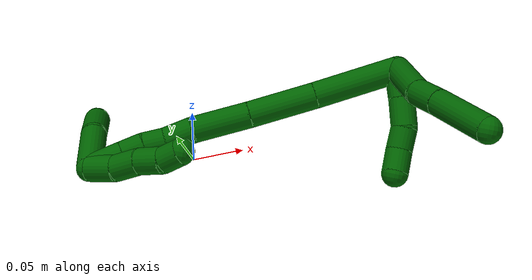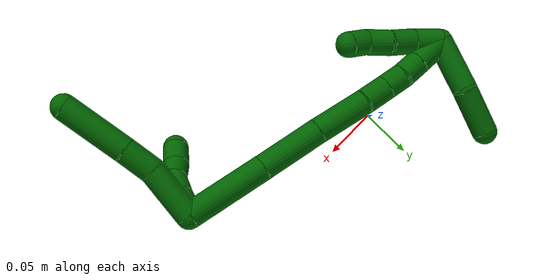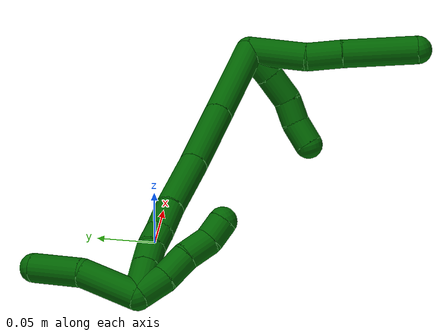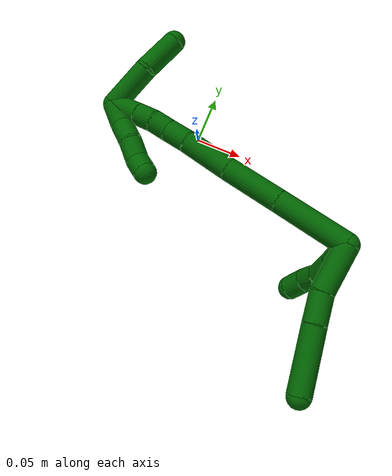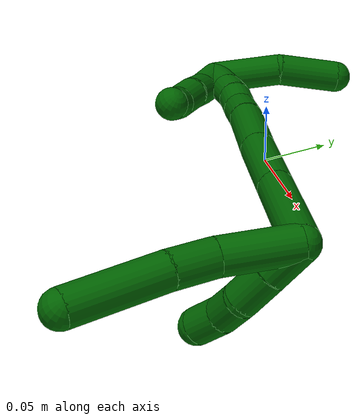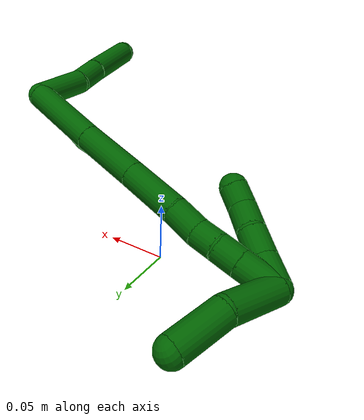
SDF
<sdf version="1.7">
 <world name="default">
  <model name="6">
   <static>0</static>
   <link name="6">
    <collision name="collision-cylinder-e_1_2_8">
     <pose>0.003951 -0.023936 -0.009791 1.95907 0.151613 0.225298</pose>
     <geometry><cylinder><radius>0.0125</radius><length>0.052322</length></cylinder></geometry>
     <surface>
      <friction><ode><mu>1.16</mu><mu2>1.16</mu2><slip1>0</slip1><slip2>0</slip2></ode></friction>
      <contact><ode><kp>1e+06</kp><kd>1</kd><max_vel>0</max_vel><min_depth>0.001</min_depth></ode></contact>
     </surface>
    </collision>
    <visual name="visual-cylinder-e_1_2_8">
     <pose>0.003951 -0.023936 -0.009791 1.95907 0.151613 0.225298</pose>
     <geometry><cylinder><radius>0.0125</radius><length>0.052322</length></cylinder></geometry>
     <material><ambient>0 0.392157 0.003922 1</ambient></material>
    </visual>
    <collision name="collision-cylinder-e_2_8_9">
     <pose>0.0134 -0.062121 -0.022854 1.79652 0.359661 0.448856</pose>
     <geometry><cylinder><radius>0.0125</radius><length>0.03124</length></cylinder></geometry>
     <surface>
      <friction><ode><mu>1.16</mu><mu2>1.16</mu2><slip1>0</slip1><slip2>0</slip2></ode></friction>
      <contact><ode><kp>1e+06</kp><kd>1</kd><max_vel>0</max_vel><min_depth>0.001</min_depth></ode></contact>
     </surface>
    </collision>
    <visual name="visual-cylinder-e_2_8_9">
     <pose>0.0134 -0.062121 -0.022854 1.79652 0.359661 0.448856</pose>
     <geometry><cylinder><radius>0.0125</radius><length>0.03124</length></cylinder></geometry>
     <material><ambient>0 0.392157 0.003922 1</ambient></material>
    </visual>
    <collision name="collision-cylinder-e_3_9_6">
     <pose>0.031949 -0.105728 -0.03457 1.85087 0.403764 0.530848</pose>
     <geometry><cylinder><radius>0.0125</radius><length>0.066439</length></cylinder></geometry>
     <surface>
      <friction><ode><mu>1.16</mu><mu2>1.16</mu2><slip1>0</slip1><slip2>0</slip2></ode></friction>
      <contact><ode><kp>1e+06</kp><kd>1</kd><max_vel>0</max_vel><min_depth>0.001</min_depth></ode></contact>
     </surface>
    </collision>
    <visual name="visual-cylinder-e_3_9_6">
     <pose>0.031949 -0.105728 -0.03457 1.85087 0.403764 0.530848</pose>
     <geometry><cylinder><radius>0.0125</radius><length>0.066439</length></cylinder></geometry>
     <material><ambient>0 0.392157 0.003922 1</ambient></material>
    </visual>
    <collision name="collision-cylinder-e_1_2_10">
     <pose>0.003485 -0.00391 -0.013161 2.85281 0.248565 1.4196</pose>
     <geometry><cylinder><radius>0.0125</radius><length>0.028329</length></cylinder></geometry>
     <surface>
      <friction><ode><mu>1.16</mu><mu2>1.16</mu2><slip1>0</slip1><slip2>0</slip2></ode></friction>
      <contact><ode><kp>1e+06</kp><kd>1</kd><max_vel>0</max_vel><min_depth>0.001</min_depth></ode></contact>
     </surface>
    </collision>
    <visual name="visual-cylinder-e_1_2_10">
     <pose>0.003485 -0.00391 -0.013161 2.85281 0.248565 1.4196</pose>
     <geometry><cylinder><radius>0.0125</radius><length>0.028329</length></cylinder></geometry>
     <material><ambient>0 0.392157 0.003922 1</ambient></material>
    </visual>
    <collision name="collision-cylinder-e_2_10_11">
     <pose>0.009733 -0.011229 -0.039258 2.88392 0.203756 1.33612</pose>
     <geometry><cylinder><radius>0.0125</radius><length>0.02732</length></cylinder></geometry>
     <surface>
      <friction><ode><mu>1.16</mu><mu2>1.16</mu2><slip1>0</slip1><slip2>0</slip2></ode></friction>
      <contact><ode><kp>1e+06</kp><kd>1</kd><max_vel>0</max_vel><min_depth>0.001</min_depth></ode></contact>
     </surface>
    </collision>
    <visual name="visual-cylinder-e_2_10_11">
     <pose>0.009733 -0.011229 -0.039258 2.88392 0.203756 1.33612</pose>
     <geometry><cylinder><radius>0.0125</radius><length>0.02732</length></cylinder></geometry>
     <material><ambient>0 0.392157 0.003922 1</ambient></material>
    </visual>
    <collision name="collision-cylinder-e_3_11_12">
     <pose>0.011893 -0.015286 -0.063027 3.08183 -0.055619 -1.49905</pose>
     <geometry><cylinder><radius>0.0125</radius><length>0.021739</length></cylinder></geometry>
     <surface>
      <friction><ode><mu>1.16</mu><mu2>1.16</mu2><slip1>0</slip1><slip2>0</slip2></ode></friction>
      <contact><ode><kp>1e+06</kp><kd>1</kd><max_vel>0</max_vel><min_depth>0.001</min_depth></ode></contact>
     </surface>
    </collision>
    <visual name="visual-cylinder-e_3_11_12">
     <pose>0.011893 -0.015286 -0.063027 3.08183 -0.055619 -1.49905</pose>
     <geometry><cylinder><radius>0.0125</radius><length>0.021739</length></cylinder></geometry>
     <material><ambient>0 0.392157 0.003922 1</ambient></material>
    </visual>
    <collision name="collision-cylinder-e_4_12_5">
     <pose>0.010395 -0.019251 -0.084631 2.84287 -0.079148 -0.514576</pose>
     <geometry><cylinder><radius>0.0125</radius><length>0.022611</length></cylinder></geometry>
     <surface>
      <friction><ode><mu>1.16</mu><mu2>1.16</mu2><slip1>0</slip1><slip2>0</slip2></ode></friction>
      <contact><ode><kp>1e+06</kp><kd>1</kd><max_vel>0</max_vel><min_depth>0.001</min_depth></ode></contact>
     </surface>
    </collision>
    <visual name="visual-cylinder-e_4_12_5">
     <pose>0.010395 -0.019251 -0.084631 2.84287 -0.079148 -0.514576</pose>
     <geometry><cylinder><radius>0.0125</radius><length>0.022611</length></cylinder></geometry>
     <material><ambient>0 0.392157 0.003922 1</ambient></material>
    </visual>
    <collision name="collision-cylinder-e_1_2_13">
     <pose>-0.034782 0.006863 -0.019323 -2.80032 -1.0381 2.55573</pose>
     <geometry><cylinder><radius>0.0125</radius><length>0.080753</length></cylinder></geometry>
     <surface>
      <friction><ode><mu>1.16</mu><mu2>1.16</mu2><slip1>0</slip1><slip2>0</slip2></ode></friction>
      <contact><ode><kp>1e+06</kp><kd>1</kd><max_vel>0</max_vel><min_depth>0.001</min_depth></ode></contact>
     </surface>
    </collision>
    <visual name="visual-cylinder-e_1_2_13">
     <pose>-0.034782 0.006863 -0.019323 -2.80032 -1.0381 2.55573</pose>
     <geometry><cylinder><radius>0.0125</radius><length>0.080753</length></cylinder></geometry>
     <material><ambient>0 0.392157 0.003922 1</ambient></material>
    </visual>
    <collision name="collision-cylinder-e_2_13_14">
     <pose>-0.097262 0.018539 -0.053293 -2.82408 -1.06288 2.60979</pose>
     <geometry><cylinder><radius>0.0125</radius><length>0.063401</length></cylinder></geometry>
     <surface>
      <friction><ode><mu>1.16</mu><mu2>1.16</mu2><slip1>0</slip1><slip2>0</slip2></ode></friction>
      <contact><ode><kp>1e+06</kp><kd>1</kd><max_vel>0</max_vel><min_depth>0.001</min_depth></ode></contact>
     </surface>
    </collision>
    <visual name="visual-cylinder-e_2_13_14">
     <pose>-0.097262 0.018539 -0.053293 -2.82408 -1.06288 2.60979</pose>
     <geometry><cylinder><radius>0.0125</radius><length>0.063401</length></cylinder></geometry>
     <material><ambient>0 0.392157 0.003922 1</ambient></material>
    </visual>
    <collision name="collision-cylinder-e_3_14_15">
     <pose>-0.148874 0.027962 -0.079908 -2.77397 -1.07851 2.53916</pose>
     <geometry><cylinder><radius>0.0125</radius><length>0.05427</length></cylinder></geometry>
     <surface>
      <friction><ode><mu>1.16</mu><mu2>1.16</mu2><slip1>0</slip1><slip2>0</slip2></ode></friction>
      <contact><ode><kp>1e+06</kp><kd>1</kd><max_vel>0</max_vel><min_depth>0.001</min_depth></ode></contact>
     </surface>
    </collision>
    <visual name="visual-cylinder-e_3_14_15">
     <pose>-0.148874 0.027962 -0.079908 -2.77397 -1.07851 2.53916</pose>
     <geometry><cylinder><radius>0.0125</radius><length>0.05427</length></cylinder></geometry>
     <material><ambient>0 0.392157 0.003922 1</ambient></material>
    </visual>
    <collision name="collision-cylinder-e_4_15_16">
     <pose>-0.183943 0.035154 -0.099263 -2.80525 -0.959111 2.51049</pose>
     <geometry><cylinder><radius>0.0125</radius><length>0.027256</length></cylinder></geometry>
     <surface>
      <friction><ode><mu>1.16</mu><mu2>1.16</mu2><slip1>0</slip1><slip2>0</slip2></ode></friction>
      <contact><ode><kp>1e+06</kp><kd>1</kd><max_vel>0</max_vel><min_depth>0.001</min_depth></ode></contact>
     </surface>
    </collision>
    <visual name="visual-cylinder-e_4_15_16">
     <pose>-0.183943 0.035154 -0.099263 -2.80525 -0.959111 2.51049</pose>
     <geometry><cylinder><radius>0.0125</radius><length>0.027256</length></cylinder></geometry>
     <material><ambient>0 0.392157 0.003922 1</ambient></material>
    </visual>
    <collision name="collision-cylinder-e_5_16_17">
     <pose>-0.204561 0.038835 -0.110907 -2.88914 -1.13582 2.74892</pose>
     <geometry><cylinder><radius>0.0125</radius><length>0.020865</length></cylinder></geometry>
     <surface>
      <friction><ode><mu>1.16</mu><mu2>1.16</mu2><slip1>0</slip1><slip2>0</slip2></ode></friction>
      <contact><ode><kp>1e+06</kp><kd>1</kd><max_vel>0</max_vel><min_depth>0.001</min_depth></ode></contact>
     </surface>
    </collision>
    <visual name="visual-cylinder-e_5_16_17">
     <pose>-0.204561 0.038835 -0.110907 -2.88914 -1.13582 2.74892</pose>
     <geometry><cylinder><radius>0.0125</radius><length>0.020865</length></cylinder></geometry>
     <material><ambient>0 0.392157 0.003922 1</ambient></material>
    </visual>
    <collision name="collision-cylinder-e_6_17_18">
     <pose>-0.222711 0.040493 -0.120915 -3.0445 -0.983957 2.96079</pose>
     <geometry><cylinder><radius>0.0125</radius><length>0.020871</length></cylinder></geometry>
     <surface>
      <friction><ode><mu>1.16</mu><mu2>1.16</mu2><slip1>0</slip1><slip2>0</slip2></ode></friction>
      <contact><ode><kp>1e+06</kp><kd>1</kd><max_vel>0</max_vel><min_depth>0.001</min_depth></ode></contact>
     </surface>
    </collision>
    <visual name="visual-cylinder-e_6_17_18">
     <pose>-0.222711 0.040493 -0.120915 -3.0445 -0.983957 2.96079</pose>
     <geometry><cylinder><radius>0.0125</radius><length>0.020871</length></cylinder></geometry>
     <material><ambient>0 0.392157 0.003922 1</ambient></material>
    </visual>
    <collision name="collision-cylinder-e_7_18_1">
     <pose>-0.244953 0.041643 -0.135692 -3.07635 -0.982269 3.01972</pose>
     <geometry><cylinder><radius>0.0125</radius><length>0.032586</length></cylinder></geometry>
     <surface>
      <friction><ode><mu>1.16</mu><mu2>1.16</mu2><slip1>0</slip1><slip2>0</slip2></ode></friction>
      <contact><ode><kp>1e+06</kp><kd>1</kd><max_vel>0</max_vel><min_depth>0.001</min_depth></ode></contact>
     </surface>
    </collision>
    <visual name="visual-cylinder-e_7_18_1">
     <pose>-0.244953 0.041643 -0.135692 -3.07635 -0.982269 3.01972</pose>
     <geometry><cylinder><radius>0.0125</radius><length>0.032586</length></cylinder></geometry>
     <material><ambient>0 0.392157 0.003922 1</ambient></material>
    </visual>
    <collision name="collision-cylinder-e_1_1_19">
     <pose>-0.257841 0.064064 -0.129884 -0.973981 0.025133 -0.013309</pose>
     <geometry><cylinder><radius>0.0125</radius><length>0.052805</length></cylinder></geometry>
     <surface>
      <friction><ode><mu>1.16</mu><mu2>1.16</mu2><slip1>0</slip1><slip2>0</slip2></ode></friction>
      <contact><ode><kp>1e+06</kp><kd>1</kd><max_vel>0</max_vel><min_depth>0.001</min_depth></ode></contact>
     </surface>
    </collision>
    <visual name="visual-cylinder-e_1_1_19">
     <pose>-0.257841 0.064064 -0.129884 -0.973981 0.025133 -0.013309</pose>
     <geometry><cylinder><radius>0.0125</radius><length>0.052805</length></cylinder></geometry>
     <material><ambient>0 0.392157 0.003922 1</ambient></material>
    </visual>
    <collision name="collision-cylinder-e_2_19_4">
     <pose>-0.255119 0.10844 -0.108392 -1.28364 0.087352 -0.065303</pose>
     <geometry><cylinder><radius>0.0125</radius><length>0.047195</length></cylinder></geometry>
     <surface>
      <friction><ode><mu>1.16</mu><mu2>1.16</mu2><slip1>0</slip1><slip2>0</slip2></ode></friction>
      <contact><ode><kp>1e+06</kp><kd>1</kd><max_vel>0</max_vel><min_depth>0.001</min_depth></ode></contact>
     </surface>
    </collision>
    <visual name="visual-cylinder-e_2_19_4">
     <pose>-0.255119 0.10844 -0.108392 -1.28364 0.087352 -0.065303</pose>
     <geometry><cylinder><radius>0.0125</radius><length>0.047195</length></cylinder></geometry>
     <material><ambient>0 0.392157 0.003922 1</ambient></material>
    </visual>
    <collision name="collision-cylinder-e_1_1_20">
     <pose>-0.24764 0.033553 -0.142076 1.27534 0.875074 0.667266</pose>
     <geometry><cylinder><radius>0.0125</radius><length>0.028309</length></cylinder></geometry>
     <surface>
      <friction><ode><mu>1.16</mu><mu2>1.16</mu2><slip1>0</slip1><slip2>0</slip2></ode></friction>
      <contact><ode><kp>1e+06</kp><kd>1</kd><max_vel>0</max_vel><min_depth>0.001</min_depth></ode></contact>
     </surface>
    </collision>
    <visual name="visual-cylinder-e_1_1_20">
     <pose>-0.24764 0.033553 -0.142076 1.27534 0.875074 0.667266</pose>
     <geometry><cylinder><radius>0.0125</radius><length>0.028309</length></cylinder></geometry>
     <material><ambient>0 0.392157 0.003922 1</ambient></material>
    </visual>
    <collision name="collision-cylinder-e_2_20_21">
     <pose>-0.22776 0.016993 -0.134047 0.971169 0.756798 0.413607</pose>
     <geometry><cylinder><radius>0.0125</radius><length>0.026261</length></cylinder></geometry>
     <surface>
      <friction><ode><mu>1.16</mu><mu2>1.16</mu2><slip1>0</slip1><slip2>0</slip2></ode></friction>
      <contact><ode><kp>1e+06</kp><kd>1</kd><max_vel>0</max_vel><min_depth>0.001</min_depth></ode></contact>
     </surface>
    </collision>
    <visual name="visual-cylinder-e_2_20_21">
     <pose>-0.22776 0.016993 -0.134047 0.971169 0.756798 0.413607</pose>
     <geometry><cylinder><radius>0.0125</radius><length>0.026261</length></cylinder></geometry>
     <material><ambient>0 0.392157 0.003922 1</ambient></material>
    </visual>
    <collision name="collision-cylinder-e_3_21_22">
     <pose>-0.209491 0.001092 -0.125916 1.24121 0.829166 0.609571</pose>
     <geometry><cylinder><radius>0.0125</radius><length>0.025097</length></cylinder></geometry>
     <surface>
      <friction><ode><mu>1.16</mu><mu2>1.16</mu2><slip1>0</slip1><slip2>0</slip2></ode></friction>
      <contact><ode><kp>1e+06</kp><kd>1</kd><max_vel>0</max_vel><min_depth>0.001</min_depth></ode></contact>
     </surface>
    </collision>
    <visual name="visual-cylinder-e_3_21_22">
     <pose>-0.209491 0.001092 -0.125916 1.24121 0.829166 0.609571</pose>
     <geometry><cylinder><radius>0.0125</radius><length>0.025097</length></cylinder></geometry>
     <material><ambient>0 0.392157 0.003922 1</ambient></material>
    </visual>
    <collision name="collision-cylinder-e_4_22_3">
     <pose>-0.1938 -0.012614 -0.117735 0.807689 0.685802 0.302784</pose>
     <geometry><cylinder><radius>0.0125</radius><length>0.020333</length></cylinder></geometry>
     <surface>
      <friction><ode><mu>1.16</mu><mu2>1.16</mu2><slip1>0</slip1><slip2>0</slip2></ode></friction>
      <contact><ode><kp>1e+06</kp><kd>1</kd><max_vel>0</max_vel><min_depth>0.001</min_depth></ode></contact>
     </surface>
    </collision>
    <visual name="visual-cylinder-e_4_22_3">
     <pose>-0.1938 -0.012614 -0.117735 0.807689 0.685802 0.302784</pose>
     <geometry><cylinder><radius>0.0125</radius><length>0.020333</length></cylinder></geometry>
     <material><ambient>0 0.392157 0.003922 1</ambient></material>
    </visual>
    <collision name="collision-sphere-3">
     <pose>-0.187361 -0.0183 -0.112296 0 -0 0</pose>
     <geometry><sphere><radius>0.0125</radius></sphere></geometry>
     <surface>
      <friction><ode><mu>1.16</mu><mu2>1.16</mu2><slip1>0</slip1><slip2>0</slip2></ode></friction>
      <contact><ode><kp>1e+06</kp><kd>1</kd><max_vel>0</max_vel><min_depth>0.001</min_depth></ode></contact>
     </surface>
    </collision>
    <visual name="visual-sphere-3">
     <pose>-0.187361 -0.0183 -0.112296 0 -0 0</pose>
     <geometry><sphere><radius>0.0125</radius></sphere></geometry>
     <material><ambient>0 0.392157 0.003922 1</ambient></material>
    </visual>
    <collision name="collision-sphere-22">
     <pose>-0.200238 -0.006928 -0.123173 0 -0 0</pose>
     <geometry><sphere><radius>0.0125</radius></sphere></geometry>
     <surface>
      <friction><ode><mu>1.16</mu><mu2>1.16</mu2><slip1>0</slip1><slip2>0</slip2></ode></friction>
      <contact><ode><kp>1e+06</kp><kd>1</kd><max_vel>0</max_vel><min_depth>0.001</min_depth></ode></contact>
     </surface>
    </collision>
    <visual name="visual-sphere-22">
     <pose>-0.200238 -0.006928 -0.123173 0 -0 0</pose>
     <geometry><sphere><radius>0.0125</radius></sphere></geometry>
     <material><ambient>0 0.392157 0.003922 1</ambient></material>
    </visual>
    <collision name="collision-sphere-21">
     <pose>-0.218744 0.009112 -0.12866 0 -0 0</pose>
     <geometry><sphere><radius>0.0125</radius></sphere></geometry>
     <surface>
      <friction><ode><mu>1.16</mu><mu2>1.16</mu2><slip1>0</slip1><slip2>0</slip2></ode></friction>
      <contact><ode><kp>1e+06</kp><kd>1</kd><max_vel>0</max_vel><min_depth>0.001</min_depth></ode></contact>
     </surface>
    </collision>
    <visual name="visual-sphere-21">
     <pose>-0.218744 0.009112 -0.12866 0 -0 0</pose>
     <geometry><sphere><radius>0.0125</radius></sphere></geometry>
     <material><ambient>0 0.392157 0.003922 1</ambient></material>
    </visual>
    <collision name="collision-sphere-20">
     <pose>-0.236775 0.024874 -0.139434 0 -0 0</pose>
     <geometry><sphere><radius>0.0125</radius></sphere></geometry>
     <surface>
      <friction><ode><mu>1.16</mu><mu2>1.16</mu2><slip1>0</slip1><slip2>0</slip2></ode></friction>
      <contact><ode><kp>1e+06</kp><kd>1</kd><max_vel>0</max_vel><min_depth>0.001</min_depth></ode></contact>
     </surface>
    </collision>
    <visual name="visual-sphere-20">
     <pose>-0.236775 0.024874 -0.139434 0 -0 0</pose>
     <geometry><sphere><radius>0.0125</radius></sphere></geometry>
     <material><ambient>0 0.392157 0.003922 1</ambient></material>
    </visual>
    <collision name="collision-sphere-4">
     <pose>-0.25306 0.130985 -0.101734 0 -0 0</pose>
     <geometry><sphere><radius>0.0125</radius></sphere></geometry>
     <surface>
      <friction><ode><mu>1.16</mu><mu2>1.16</mu2><slip1>0</slip1><slip2>0</slip2></ode></friction>
      <contact><ode><kp>1e+06</kp><kd>1</kd><max_vel>0</max_vel><min_depth>0.001</min_depth></ode></contact>
     </surface>
    </collision>
    <visual name="visual-sphere-4">
     <pose>-0.25306 0.130985 -0.101734 0 -0 0</pose>
     <geometry><sphere><radius>0.0125</radius></sphere></geometry>
     <material><ambient>0 0.392157 0.003922 1</ambient></material>
    </visual>
    <collision name="collision-sphere-11">
     <pose>0.012498 -0.014638 -0.052193 0 -0 0</pose>
     <geometry><sphere><radius>0.0125</radius></sphere></geometry>
     <surface>
      <friction><ode><mu>1.16</mu><mu2>1.16</mu2><slip1>0</slip1><slip2>0</slip2></ode></friction>
      <contact><ode><kp>1e+06</kp><kd>1</kd><max_vel>0</max_vel><min_depth>0.001</min_depth></ode></contact>
     </surface>
    </collision>
    <visual name="visual-sphere-11">
     <pose>0.012498 -0.014638 -0.052193 0 -0 0</pose>
     <geometry><sphere><radius>0.0125</radius></sphere></geometry>
     <material><ambient>0 0.392157 0.003922 1</ambient></material>
    </visual>
    <collision name="collision-sphere-10">
     <pose>0.006969 -0.00782 -0.026322 0 -0 0</pose>
     <geometry><sphere><radius>0.0125</radius></sphere></geometry>
     <surface>
      <friction><ode><mu>1.16</mu><mu2>1.16</mu2><slip1>0</slip1><slip2>0</slip2></ode></friction>
      <contact><ode><kp>1e+06</kp><kd>1</kd><max_vel>0</max_vel><min_depth>0.001</min_depth></ode></contact>
     </surface>
    </collision>
    <visual name="visual-sphere-10">
     <pose>0.006969 -0.00782 -0.026322 0 -0 0</pose>
     <geometry><sphere><radius>0.0125</radius></sphere></geometry>
     <material><ambient>0 0.392157 0.003922 1</ambient></material>
    </visual>
    <collision name="collision-sphere-6">
     <pose>0.045 -0.135086 -0.043014 0 -0 0</pose>
     <geometry><sphere><radius>0.0125</radius></sphere></geometry>
     <surface>
      <friction><ode><mu>1.16</mu><mu2>1.16</mu2><slip1>0</slip1><slip2>0</slip2></ode></friction>
      <contact><ode><kp>1e+06</kp><kd>1</kd><max_vel>0</max_vel><min_depth>0.001</min_depth></ode></contact>
     </surface>
    </collision>
    <visual name="visual-sphere-6">
     <pose>0.045 -0.135086 -0.043014 0 -0 0</pose>
     <geometry><sphere><radius>0.0125</radius></sphere></geometry>
     <material><ambient>0 0.392157 0.003922 1</ambient></material>
    </visual>
    <collision name="collision-sphere-9">
     <pose>0.018897 -0.076371 -0.026126 0 -0 0</pose>
     <geometry><sphere><radius>0.0125</radius></sphere></geometry>
     <surface>
      <friction><ode><mu>1.16</mu><mu2>1.16</mu2><slip1>0</slip1><slip2>0</slip2></ode></friction>
      <contact><ode><kp>1e+06</kp><kd>1</kd><max_vel>0</max_vel><min_depth>0.001</min_depth></ode></contact>
     </surface>
    </collision>
    <visual name="visual-sphere-9">
     <pose>0.018897 -0.076371 -0.026126 0 -0 0</pose>
     <geometry><sphere><radius>0.0125</radius></sphere></geometry>
     <material><ambient>0 0.392157 0.003922 1</ambient></material>
    </visual>
    <collision name="collision-sphere-2">
     <geometry><sphere><radius>0.0125</radius></sphere></geometry>
     <surface>
      <friction><ode><mu>1.16</mu><mu2>1.16</mu2><slip1>0</slip1><slip2>0</slip2></ode></friction>
      <contact><ode><kp>1e+06</kp><kd>1</kd><max_vel>0</max_vel><min_depth>0.001</min_depth></ode></contact>
     </surface>
    </collision>
    <visual name="visual-sphere-2">
     <geometry><sphere><radius>0.0125</radius></sphere></geometry>
     <material><ambient>0 0.392157 0.003922 1</ambient></material>
    </visual>
    <collision name="collision-sphere-19">
     <pose>-0.257177 0.085895 -0.11505 0 -0 0</pose>
     <geometry><sphere><radius>0.0125</radius></sphere></geometry>
     <surface>
      <friction><ode><mu>1.16</mu><mu2>1.16</mu2><slip1>0</slip1><slip2>0</slip2></ode></friction>
      <contact><ode><kp>1e+06</kp><kd>1</kd><max_vel>0</max_vel><min_depth>0.001</min_depth></ode></contact>
     </surface>
    </collision>
    <visual name="visual-sphere-19">
     <pose>-0.257177 0.085895 -0.11505 0 -0 0</pose>
     <geometry><sphere><radius>0.0125</radius></sphere></geometry>
     <material><ambient>0 0.392157 0.003922 1</ambient></material>
    </visual>
    <collision name="collision-sphere-8">
     <pose>0.007902 -0.047871 -0.019581 0 -0 0</pose>
     <geometry><sphere><radius>0.0125</radius></sphere></geometry>
     <surface>
      <friction><ode><mu>1.16</mu><mu2>1.16</mu2><slip1>0</slip1><slip2>0</slip2></ode></friction>
      <contact><ode><kp>1e+06</kp><kd>1</kd><max_vel>0</max_vel><min_depth>0.001</min_depth></ode></contact>
     </surface>
    </collision>
    <visual name="visual-sphere-8">
     <pose>0.007902 -0.047871 -0.019581 0 -0 0</pose>
     <geometry><sphere><radius>0.0125</radius></sphere></geometry>
     <material><ambient>0 0.392157 0.003922 1</ambient></material>
    </visual>
    <collision name="collision-sphere-12">
     <pose>0.011289 -0.015934 -0.07386 0 -0 0</pose>
     <geometry><sphere><radius>0.0125</radius></sphere></geometry>
     <surface>
      <friction><ode><mu>1.16</mu><mu2>1.16</mu2><slip1>0</slip1><slip2>0</slip2></ode></friction>
      <contact><ode><kp>1e+06</kp><kd>1</kd><max_vel>0</max_vel><min_depth>0.001</min_depth></ode></contact>
     </surface>
    </collision>
    <visual name="visual-sphere-12">
     <pose>0.011289 -0.015934 -0.07386 0 -0 0</pose>
     <geometry><sphere><radius>0.0125</radius></sphere></geometry>
     <material><ambient>0 0.392157 0.003922 1</ambient></material>
    </visual>
    <collision name="collision-sphere-5">
     <pose>0.009501 -0.022568 -0.095402 0 -0 0</pose>
     <geometry><sphere><radius>0.0125</radius></sphere></geometry>
     <surface>
      <friction><ode><mu>1.16</mu><mu2>1.16</mu2><slip1>0</slip1><slip2>0</slip2></ode></friction>
      <contact><ode><kp>1e+06</kp><kd>1</kd><max_vel>0</max_vel><min_depth>0.001</min_depth></ode></contact>
     </surface>
    </collision>
    <visual name="visual-sphere-5">
     <pose>0.009501 -0.022568 -0.095402 0 -0 0</pose>
     <geometry><sphere><radius>0.0125</radius></sphere></geometry>
     <material><ambient>0 0.392157 0.003922 1</ambient></material>
    </visual>
    <collision name="collision-sphere-13">
     <pose>-0.069564 0.013726 -0.038646 0 -0 0</pose>
     <geometry><sphere><radius>0.0125</radius></sphere></geometry>
     <surface>
      <friction><ode><mu>1.16</mu><mu2>1.16</mu2><slip1>0</slip1><slip2>0</slip2></ode></friction>
      <contact><ode><kp>1e+06</kp><kd>1</kd><max_vel>0</max_vel><min_depth>0.001</min_depth></ode></contact>
     </surface>
    </collision>
    <visual name="visual-sphere-13">
     <pose>-0.069564 0.013726 -0.038646 0 -0 0</pose>
     <geometry><sphere><radius>0.0125</radius></sphere></geometry>
     <material><ambient>0 0.392157 0.003922 1</ambient></material>
    </visual>
    <collision name="collision-sphere-14">
     <pose>-0.124961 0.023352 -0.06794 0 -0 0</pose>
     <geometry><sphere><radius>0.0125</radius></sphere></geometry>
     <surface>
      <friction><ode><mu>1.16</mu><mu2>1.16</mu2><slip1>0</slip1><slip2>0</slip2></ode></friction>
      <contact><ode><kp>1e+06</kp><kd>1</kd><max_vel>0</max_vel><min_depth>0.001</min_depth></ode></contact>
     </surface>
    </collision>
    <visual name="visual-sphere-14">
     <pose>-0.124961 0.023352 -0.06794 0 -0 0</pose>
     <geometry><sphere><radius>0.0125</radius></sphere></geometry>
     <material><ambient>0 0.392157 0.003922 1</ambient></material>
    </visual>
    <collision name="collision-sphere-15">
     <pose>-0.172786 0.032571 -0.091876 0 -0 0</pose>
     <geometry><sphere><radius>0.0125</radius></sphere></geometry>
     <surface>
      <friction><ode><mu>1.16</mu><mu2>1.16</mu2><slip1>0</slip1><slip2>0</slip2></ode></friction>
      <contact><ode><kp>1e+06</kp><kd>1</kd><max_vel>0</max_vel><min_depth>0.001</min_depth></ode></contact>
     </surface>
    </collision>
    <visual name="visual-sphere-15">
     <pose>-0.172786 0.032571 -0.091876 0 -0 0</pose>
     <geometry><sphere><radius>0.0125</radius></sphere></geometry>
     <material><ambient>0 0.392157 0.003922 1</ambient></material>
    </visual>
    <collision name="collision-sphere-16">
     <pose>-0.1951 0.037737 -0.106651 0 -0 0</pose>
     <geometry><sphere><radius>0.0125</radius></sphere></geometry>
     <surface>
      <friction><ode><mu>1.16</mu><mu2>1.16</mu2><slip1>0</slip1><slip2>0</slip2></ode></friction>
      <contact><ode><kp>1e+06</kp><kd>1</kd><max_vel>0</max_vel><min_depth>0.001</min_depth></ode></contact>
     </surface>
    </collision>
    <visual name="visual-sphere-16">
     <pose>-0.1951 0.037737 -0.106651 0 -0 0</pose>
     <geometry><sphere><radius>0.0125</radius></sphere></geometry>
     <material><ambient>0 0.392157 0.003922 1</ambient></material>
    </visual>
    <collision name="collision-sphere-17">
     <pose>-0.214022 0.039933 -0.115164 0 -0 0</pose>
     <geometry><sphere><radius>0.0125</radius></sphere></geometry>
     <surface>
      <friction><ode><mu>1.16</mu><mu2>1.16</mu2><slip1>0</slip1><slip2>0</slip2></ode></friction>
      <contact><ode><kp>1e+06</kp><kd>1</kd><max_vel>0</max_vel><min_depth>0.001</min_depth></ode></contact>
     </surface>
    </collision>
    <visual name="visual-sphere-17">
     <pose>-0.214022 0.039933 -0.115164 0 -0 0</pose>
     <geometry><sphere><radius>0.0125</radius></sphere></geometry>
     <material><ambient>0 0.392157 0.003922 1</ambient></material>
    </visual>
    <collision name="collision-sphere-18">
     <pose>-0.231401 0.041053 -0.126667 0 -0 0</pose>
     <geometry><sphere><radius>0.0125</radius></sphere></geometry>
     <surface>
      <friction><ode><mu>1.16</mu><mu2>1.16</mu2><slip1>0</slip1><slip2>0</slip2></ode></friction>
      <contact><ode><kp>1e+06</kp><kd>1</kd><max_vel>0</max_vel><min_depth>0.001</min_depth></ode></contact>
     </surface>
    </collision>
    <visual name="visual-sphere-18">
     <pose>-0.231401 0.041053 -0.126667 0 -0 0</pose>
     <geometry><sphere><radius>0.0125</radius></sphere></geometry>
     <material><ambient>0 0.392157 0.003922 1</ambient></material>
    </visual>
    <collision name="collision-sphere-1">
     <pose>-0.258504 0.042232 -0.144718 0 -0 0</pose>
     <geometry><sphere><radius>0.0125</radius></sphere></geometry>
     <surface>
      <friction><ode><mu>1.16</mu><mu2>1.16</mu2><slip1>0</slip1><slip2>0</slip2></ode></friction>
      <contact><ode><kp>1e+06</kp><kd>1</kd><max_vel>0</max_vel><min_depth>0.001</min_depth></ode></contact>
     </surface>
    </collision>
    <visual name="visual-sphere-1">
     <pose>-0.258504 0.042232 -0.144718 0 -0 0</pose>
     <geometry><sphere><radius>0.0125</radius></sphere></geometry>
     <material><ambient>0 0.392157 0.003922 1</ambient></material>
    </visual>
    <inertial>
     <pose>-0.11094 0.00731 -0.072751 0 -0 0</pose>
     <mass>0.75</mass>
     <inertia><ixx>6.8e-05</ixx><ixy>0</ixy><ixz>0</ixz><iyy>0.000141</iyy><iyz>0</iyz><izz>5.5e-05</izz></inertia>
    </inertial>
   </link>
   <pose>0.183209 -0.057798 0.087484 -0.456836 0.270408 -0.287464</pose>
  </model>
 </world>
</sdf>
